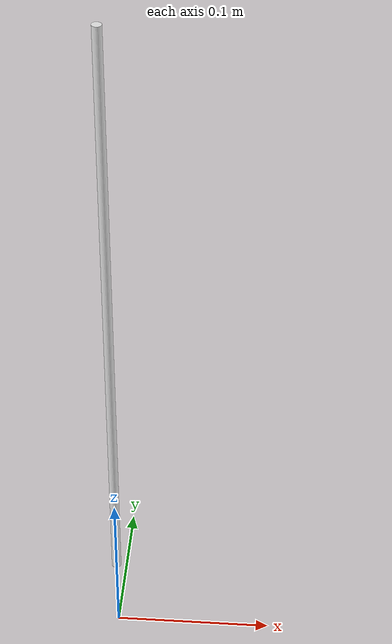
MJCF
<mujoco model="fetoscope">

	<option timestep="0.0001" integrator="RK4" >
		<flag sensornoise="enable" energy="enable" contact="enable" />
	</option>

	<worldbody>

		<body pos="0 0 0.25" euler="0 180 0">
		  	<joint name="x" type="hinge" axis="1 0 0" pos ="0 0 -0.16"/>
			<joint name="y" type="hinge" axis="0 1 0" pos ="0 0 -0.16"/>

			<geom type="cylinder" size="0.003 0.2" rgba="0.9 .9 0.9 1" mass="1"/>
			<camera name="eye" mode="fixed" pos="0 0 0" euler='0 180 0' fovy="5"/>
			<light specular=".1 .1 .1" pos="0 0 0.2" dir="0 0 1" />

		</body>

	</worldbody>

	<actuator>
		<position name="x_axis" joint="x" kp="1" kv="1"/>
		<position name="y_axis" joint="y" kp="1" kv="1"/>

	</actuator>

</mujoco>
